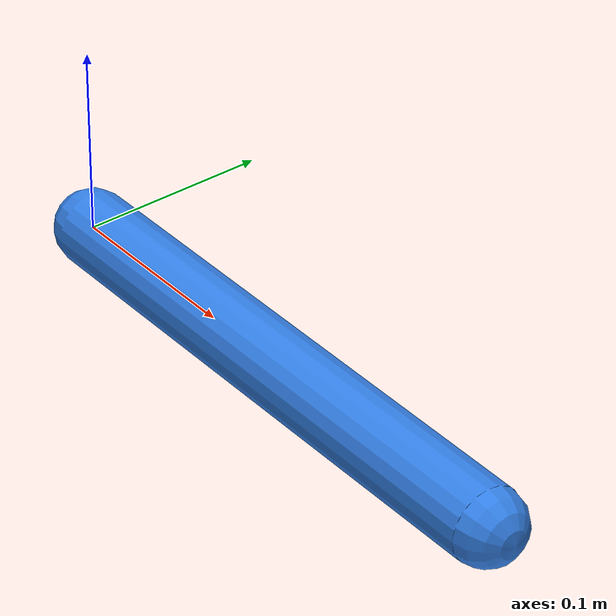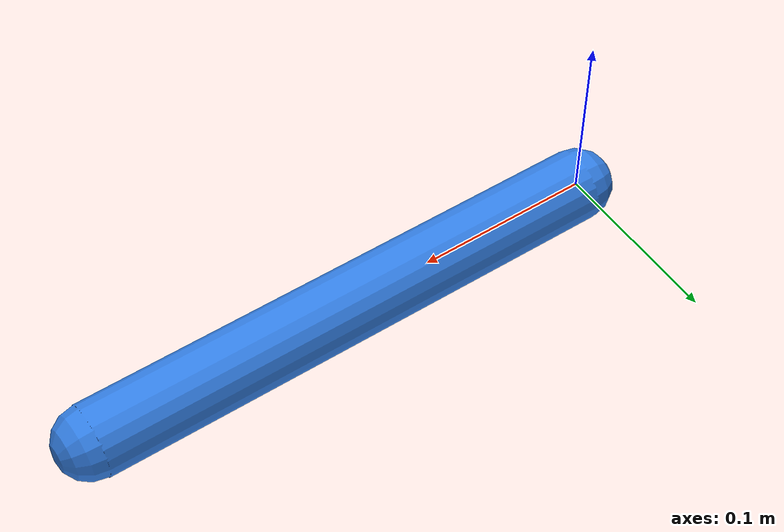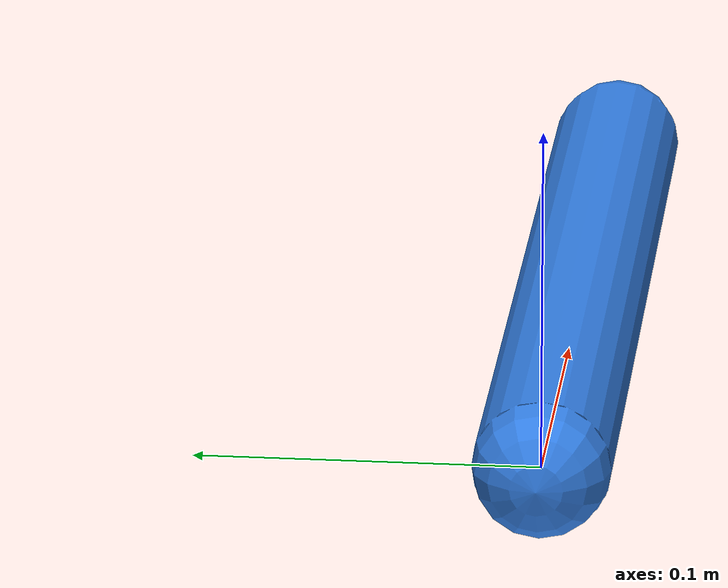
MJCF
<mujoco model="single_joint">
  <compiler angle="radian"/>
  <option gravity="0 0 0"/>

  <worldbody>
    <light pos="0 0 2"/>

    <body name="arm" pos="0 0 0">
      <joint name="hinge" type="hinge"
             axis="0 0 1" limited="true" range="-1 1"/>

      <geom type="capsule"
            fromto="0 0 0  0.3 0 0"
            size="0.02" mass="0.2"
            rgba="0.2 0.5 0.9 1"/>
    </body>
  </worldbody>

    <actuator>
    <velocity name="hinge_speed"
              joint="hinge"
              kv="1"
              ctrllimited="true"
              ctrlrange="-0.4 0.4"/>
  </actuator>

</mujoco>
